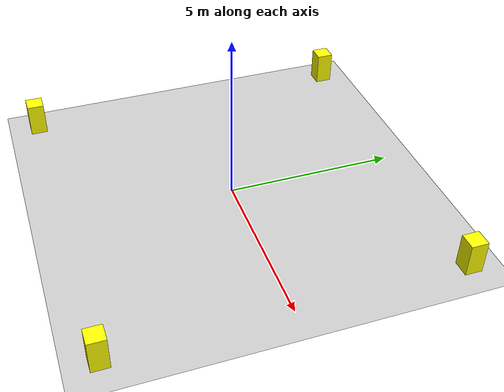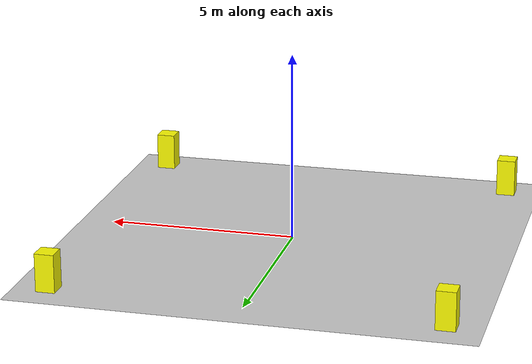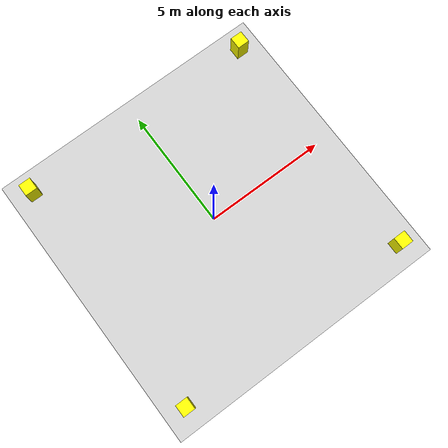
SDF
<?xml version="1.0" ?>
<sdf version="1.6">
  <world name="tether_robotics_world">
    <!-- A global light source -->
    <include>
      <uri>model://sun</uri>
    </include>

    <!-- A ground plane -->
    <include>
      <uri>model://ground_plane</uri>
    </include>

    <!-- Physics configuration -->
    <physics name="1ms" type="ode">
      <max_step_size>0.001</max_step_size>
      <real_time_factor>1.0</real_time_factor>
      <real_time_update_rate>1000</real_time_update_rate>
    </physics>

    <!-- Yellow Cubic Posts acting as field markers/boundaries -->
    <!-- Post 1 -->
    <model name="yellow_post_1">
      <static>true</static>
      <pose>5 5 0.5 0 0 0</pose>
      <link name="link">
        <collision name="collision">
          <geometry>
            <box>
              <size>0.5 0.5 1.0</size>
            </box>
          </geometry>
        </collision>
        <visual name="visual">
          <geometry>
            <box>
              <size>0.5 0.5 1.0</size>
            </box>
          </geometry>
          <material>
            <ambient>1 1 0 1</ambient>
            <diffuse>1 1 0 1</diffuse>
          </material>
        </visual>
      </link>
    </model>

    <!-- Post 2 -->
    <model name="yellow_post_2">
      <static>true</static>
      <pose>-5 5 0.5 0 0 0</pose>
      <link name="link">
        <collision name="collision">
          <geometry>
            <box>
              <size>0.5 0.5 1.0</size>
            </box>
          </geometry>
        </collision>
        <visual name="visual">
          <geometry>
            <box>
              <size>0.5 0.5 1.0</size>
            </box>
          </geometry>
          <material>
            <ambient>1 1 0 1</ambient>
            <diffuse>1 1 0 1</diffuse>
          </material>
        </visual>
      </link>
    </model>

    <!-- Post 3 -->
    <model name="yellow_post_3">
      <static>true</static>
      <pose>-5 -5 0.5 0 0 0</pose>
      <link name="link">
        <collision name="collision">
          <geometry>
            <box>
              <size>0.5 0.5 1.0</size>
            </box>
          </geometry>
        </collision>
        <visual name="visual">
          <geometry>
            <box>
              <size>0.5 0.5 1.0</size>
            </box>
          </geometry>
          <material>
            <ambient>1 1 0 1</ambient>
            <diffuse>1 1 0 1</diffuse>
          </material>
        </visual>
      </link>
    </model>

    <!-- Post 4 -->
    <model name="yellow_post_4">
      <static>true</static>
      <pose>5 -5 0.5 0 0 0</pose>
      <link name="link">
        <collision name="collision">
          <geometry>
            <box>
              <size>0.5 0.5 1.0</size>
            </box>
          </geometry>
        </collision>
        <visual name="visual">
          <geometry>
            <box>
              <size>0.5 0.5 1.0</size>
            </box>
          </geometry>
          <material>
            <ambient>1 1 0 1</ambient>
            <diffuse>1 1 0 1</diffuse>
          </material>
        </visual>
      </link>
    </model>

  </world>
</sdf>
